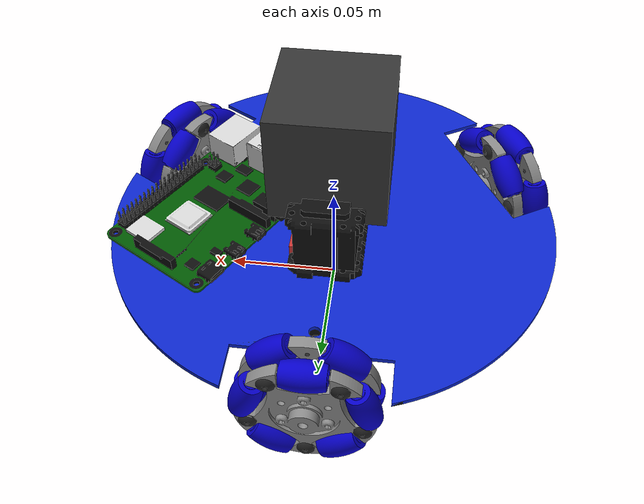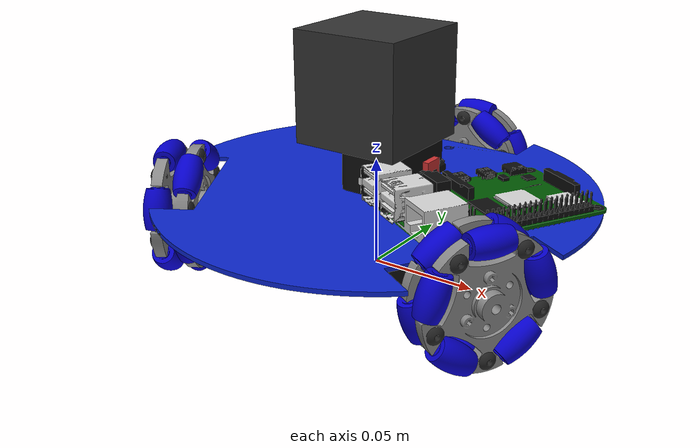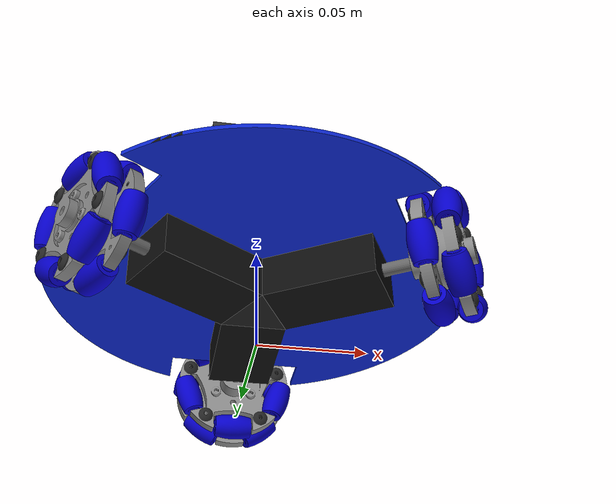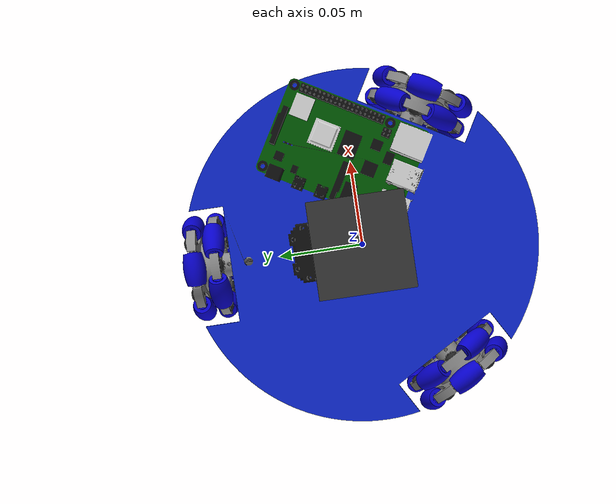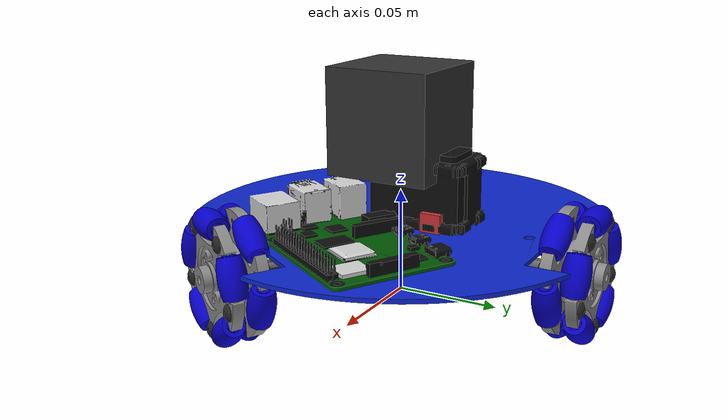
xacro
<?xml version="1.0"?>
<robot xmlns:xacro="http://www.ros.org/wiki/xacro" name="omni_with_mid360">
  <xacro:arg name="sensor_namespace" default="omni"/>

  <!-- Include Omni Base -->
  <xacro:include filename="$(find simple_rbt)/model/omni/omni_robot.urdf.xacro"/>

  <!-- Include Mid360 Sensor -->
  <xacro:include filename="$(find simple_rbt)/model/sensor/simple_mid360/model.xacro"/>

  <xacro:simple_mid360
    parent_link="base_link"
    xyz="0.0 0.0 0.05"
    rpy="0 0 0"
    sensor_namespace="$(arg sensor_namespace)"
  />

</robot>

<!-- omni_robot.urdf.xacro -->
<robot name="omni_robot" xmlns:xacro="http://ros.org/wiki/xacro">

  <!-- xacro property -->
  <xacro:property name="M_PI" value="3.14159274"/>

  <!-- xacro include file -->
  <xacro:include filename="$(find simple_rbt)/model/omni/urdf/base/base.urdf.xacro"/>  <!--base-->
  <xacro:include filename="$(find simple_rbt)/model/omni/urdf/omni_wheel/omni_wheel.urdf.xacro"/>   <!--omni-wheel-->
  <xacro:include filename="$(find simple_rbt)/model/omni/urdf/roller/roller.urdf.xacro"/>   <!--roller-->

  <!-- =============== Link & Joint =============== -->
  <!-- Base -->
  <link name="base_footprint"/>
  <xacro:base_v0 parent="base_footprint">
        <origin xyz="0 0 0.035" rpy="0 0 0" />
  </xacro:base_v0>

  <!-- Wheel -->
  <!-- 1st wheel -->
  <xacro:wheel_v0 prefix="first" parent="base_link">
	<origin xyz="0 0.088 -0.01" rpy="0 0 3.141593"/>
	<axis xyz="0 1 0"/>
  </xacro:wheel_v0>

  <xacro:roller_v0 prefix="r1_F" parent="first_wheel_link">
	<origin xyz="0 -0.006 0.024063" rpy="0 0 1.570796"/>
	<axis xyz="0 1 0"/>
  </xacro:roller_v0>
  <xacro:roller_v0 prefix="r2_F" parent="first_wheel_link">
	<origin xyz="-0.0228853 -0.006 0.0074359" rpy="-1.256637 0 1.570796"/>
	<axis xyz="0 1 0"/>
  </xacro:roller_v0>
  <xacro:roller_v0 prefix="r3_F" parent="first_wheel_link">
	<origin xyz="-0.0141439 -0.006 -0.0194674" rpy="-2.513274 0 1.570796"/>
	<axis xyz="0 1 0"/>
  </xacro:roller_v0>
  <xacro:roller_v0 prefix="r4_F" parent="first_wheel_link">
	<origin xyz="0.0141439 -0.006 -0.0194674" rpy="-3.769911 0 1.570796"/>
	<axis xyz="0 1 0"/>
  </xacro:roller_v0>
  <xacro:roller_v0 prefix="r5_F" parent="first_wheel_link">
	<origin xyz="0.0228853 -0.006 0.0074359" rpy="-5.026548 0 1.570796"/>
	<axis xyz="0 1 0"/>
  </xacro:roller_v0>

  <xacro:roller_v0 prefix="r6_F" parent="first_wheel_link">
	<origin xyz="0 0.006 -0.024063" rpy="0 0 1.570796"/>
	<axis xyz="0 1 0"/>
  </xacro:roller_v0>
  <xacro:roller_v0 prefix="r7_F" parent="first_wheel_link">
	<origin xyz="0.0228853 0.006 -0.0074359" rpy="-1.256637 0 1.570796"/>
	<axis xyz="0 1 0"/>
  </xacro:roller_v0>
  <xacro:roller_v0 prefix="r8_F" parent="first_wheel_link">
	<origin xyz="0.0141439 0.006 0.0194674" rpy="-2.513274 0 1.570796"/>
	<axis xyz="0 1 0"/>
  </xacro:roller_v0>
  <xacro:roller_v0 prefix="r9_F" parent="first_wheel_link">
	<origin xyz="-0.0141439 0.006 0.0194674" rpy="-3.769911 0 1.570796"/>
	<axis xyz="0 1 0"/>
  </xacro:roller_v0>
  <xacro:roller_v0 prefix="r10_F" parent="first_wheel_link">
	<origin xyz="-0.0228853 0.006 -0.0074359" rpy="-5.026548 0 1.570796"/>
	<axis xyz="0 1 0"/>
  </xacro:roller_v0>

  <!-- 2nd wheel -->
  <xacro:wheel_v0 prefix="second" parent="base_link">
	<origin xyz="-0.0762 -0.044 -0.01" rpy="0 0 5.235988" />
	<axis xyz="0 1 0"/>
  </xacro:wheel_v0>

  <xacro:roller_v0 prefix="r1_S" parent="second_wheel_link">
	<origin xyz="0 -0.006 0.024063" rpy="0 0 1.570796"/>
	<axis xyz="0 1 0"/>
  </xacro:roller_v0>
  <xacro:roller_v0 prefix="r2_S" parent="second_wheel_link">
	<origin xyz="-0.0228853 -0.006 0.0074359" rpy="-1.256637 0 1.570796"/>
	<axis xyz="0 1 0"/>
  </xacro:roller_v0>
  <xacro:roller_v0 prefix="r3_S" parent="second_wheel_link">
	<origin xyz="-0.0141439 -0.006 -0.0194674" rpy="-2.513274 0 1.570796"/>
	<axis xyz="0 1 0"/>
  </xacro:roller_v0>
  <xacro:roller_v0 prefix="r4_S" parent="second_wheel_link">
	<origin xyz="0.0141439 -0.006 -0.0194674" rpy="-3.769911 0 1.570796"/>
	<axis xyz="0 1 0"/>
  </xacro:roller_v0>
  <xacro:roller_v0 prefix="r5_S" parent="second_wheel_link">
	<origin xyz="0.0228853 -0.006 0.0074359" rpy="-5.026548 0 1.570796"/>
	<axis xyz="0 1 0"/>
  </xacro:roller_v0>

  <xacro:roller_v0 prefix="r6_S" parent="second_wheel_link">
	<origin xyz="0 0.006 -0.024063" rpy="0 0 1.570796"/>
	<axis xyz="0 1 0"/>
  </xacro:roller_v0>
  <xacro:roller_v0 prefix="r7_S" parent="second_wheel_link">
	<origin xyz="0.0228853 0.006 -0.0074359" rpy="-1.256637 0 1.570796"/>
	<axis xyz="0 1 0"/>
  </xacro:roller_v0>
  <xacro:roller_v0 prefix="r8_S" parent="second_wheel_link">
	<origin xyz="0.0141439 0.006 0.0194674" rpy="-2.513274 0 1.570796"/>
	<axis xyz="0 1 0"/>
  </xacro:roller_v0>
  <xacro:roller_v0 prefix="r9_S" parent="second_wheel_link">
	<origin xyz="-0.0141439 0.006 0.0194674" rpy="-3.769911 0 1.570796"/>
	<axis xyz="0 1 0"/>
  </xacro:roller_v0>
  <xacro:roller_v0 prefix="r10_S" parent="second_wheel_link">
	<origin xyz="-0.0228853 0.006 -0.0074359" rpy="-5.026548 0 1.570796"/>
	<axis xyz="0 1 0"/>
  </xacro:roller_v0>

<!-- 3rd wheel -->
  <xacro:wheel_v0 prefix="third" parent="base_link">
	<origin xyz="0.0762 -0.044 -0.01" rpy="0 0 1.047197" />
	<axis xyz="0 1 0"/>
  </xacro:wheel_v0>

  <xacro:roller_v0 prefix="r1_T" parent="third_wheel_link">
	<origin xyz="0 -0.006 0.024063" rpy="0 0 1.570796"/>
	<axis xyz="0 1 0"/>
  </xacro:roller_v0>
  <xacro:roller_v0 prefix="r2_T" parent="third_wheel_link">
	<origin xyz="-0.0228853 -0.006 0.0074359" rpy="-1.256637 0 1.570796"/>
	<axis xyz="0 1 0"/>
  </xacro:roller_v0>
  <xacro:roller_v0 prefix="r3_T" parent="third_wheel_link">
	<origin xyz="-0.0141439 -0.006 -0.0194674" rpy="-2.513274 0 1.570796"/>
	<axis xyz="0 1 0"/>
  </xacro:roller_v0>
  <xacro:roller_v0 prefix="r4_T" parent="third_wheel_link">
	<origin xyz="0.0141439 -0.006 -0.0194674" rpy="-3.769911 0 1.570796"/>
	<axis xyz="0 1 0"/>
  </xacro:roller_v0>
  <xacro:roller_v0 prefix="r5_T" parent="third_wheel_link">
	<origin xyz="0.0228853 -0.006 0.0074359" rpy="-5.026548 0 1.570796"/>
	<axis xyz="0 1 0"/>
  </xacro:roller_v0>

  <xacro:roller_v0 prefix="r6_T" parent="third_wheel_link">
	<origin xyz="0 0.006 -0.024063" rpy="0 0 1.570796"/>
	<axis xyz="0 1 0"/>
  </xacro:roller_v0>
  <xacro:roller_v0 prefix="r7_T" parent="third_wheel_link">
	<origin xyz="0.0228853 0.006 -0.0074359" rpy="-1.256637 0 1.570796"/>
	<axis xyz="0 1 0"/>
  </xacro:roller_v0>
  <xacro:roller_v0 prefix="r8_T" parent="third_wheel_link">
	<origin xyz="0.0141439 0.006 0.0194674" rpy="-2.513274 0 1.570796"/>
	<axis xyz="0 1 0"/>
  </xacro:roller_v0>
  <xacro:roller_v0 prefix="r9_T" parent="third_wheel_link">
	<origin xyz="-0.0141439 0.006 0.0194674" rpy="-3.769911 0 1.570796"/>
	<axis xyz="0 1 0"/>
  </xacro:roller_v0>
  <xacro:roller_v0 prefix="r10_T" parent="third_wheel_link">
	<origin xyz="-0.0228853 0.006 -0.0074359" rpy="-5.026548 0 1.570796"/>
	<axis xyz="0 1 0"/>
  </xacro:roller_v0>

  <!-- ===============  Transmission =============== -->
  <xacro:wheel_trans_v0 prefix="first"/>
  <xacro:wheel_trans_v0 prefix="second"/>
  <xacro:wheel_trans_v0 prefix="third"/>
  <!-- =============== Gazebo =============== -->
  <gazebo>
    <plugin name="gazebo_ros_control" filename="libgazebo_ros_control.so">
      <robotNamespace>$(arg robot_namespace)</robotNamespace>
    </plugin>
  </gazebo>

  <!-- Base -->
  <xacro:base_gazebo_v0/>

  <!-- Wheel -->
  <xacro:wheel_gazebo_v0 prefix="first"/>
  <xacro:wheel_gazebo_v0 prefix="second"/>
  <xacro:wheel_gazebo_v0 prefix="third"/>
</robot>

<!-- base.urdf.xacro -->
<robot xmlns:xacro="http://ros.org/wiki/xacro">

  <xacro:include filename="$(find simple_rbt)/model/omni/urdf/base/base.gazebo.xacro"/>

  <xacro:macro name="base_v0" params="parent *joint_origin">
	<joint name="base_link_joint" type="fixed">
	  <xacro:insert_block name="joint_origin"/>
	  <parent link="${parent}"/>
	  <child link="base_link"/>
	</joint>

	<link name="base_link">
	  <visual>
		<geometry>
		  <mesh filename="package://simple_rbt/model/omni/meshes/DAE/base/omni_wheel_body.dae"/>
		</geometry>
	  </visual>
	  <collision>
		<geometry>
		  <mesh filename="package://simple_rbt/model/omni/meshes/STL/base/base_link.stl"/>
		</geometry>
	  </collision>
	  <inertial>
		<origin xyz="0 0 0"/>
		<mass value="1.167"/>
		<inertia ixx="0.0016" ixy="0" ixz="0" iyy="0.0016" iyz="0" izz="0.0032" />
	  </inertial>
          <surface>
            <friction>
              <ode>
                <mu>0.8</mu>
                <mu2>0.8</mu2>
                <kp>1e15</kp>
                <kd>1e13</kd>
              </ode>
            </friction>
            <bounce>
              <restitution_coefficient>0.01</restitution_coefficient>
              <threshold>10</threshold>
            </bounce>
            <contact>
              <ode>
                <max_vel>0.01</max_vel>
                <minDepth>0</minDepth>
                <contact_surface_layer>0</contact_surface_layer>
              </ode>
            </contact>
          </surface>
	</link>
  </xacro:macro>

</robot>

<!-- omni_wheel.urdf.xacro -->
<robot xmlns:xacro="http://ros.org/wiki/xacro">

  <xacro:include filename="$(find simple_rbt)/model/omni/urdf/omni_wheel/omni_wheel.transmission.xacro"/>
  <xacro:include filename="$(find simple_rbt)/model/omni/urdf/omni_wheel/omni_wheel.gazebo.xacro"/>

  <xacro:macro name="wheel_v0" params="prefix parent *joint_origin *joint_axis">
	<joint name="${prefix}_wheel_joint" type="continuous">
	  <xacro:insert_block name="joint_origin"/>
	  <parent link="${parent}"/>
	  <child link="${prefix}_wheel_link"/>
          <limit effort="100" velocity="100"/>
	  <xacro:insert_block name="joint_axis"/>
	</joint>

	<link name="${prefix}_wheel_link">
	  <visual>
		<geometry>
		  <mesh filename="package://simple_rbt/model/omni/meshes/DAE/omni_wheel/omni_wheel.dae"/>
		</geometry>
	  </visual>
	  <collision>
		<geometry>
		  <mesh filename="package://simple_rbt/model/omni/meshes/STL/omni_wheel/omni_wheel.stl"/>
		</geometry>
	  </collision>
	  <inertial>
		<origin xyz="0.0 -0.011 -0.0"/>
		<mass value="0.25"/>
		<inertia ixx="0.00031" ixy="0" ixz="0" iyy="0.0005" iyz="0" izz="0.00031"/>
	  </inertial>
          <surface>
            <friction>
              <ode>
                <mu1>1.2</mu1>
                <mu2>1.2</mu2>
                <kp>1e15</kp>
                <kd>1e13</kd>
              </ode>
            </friction>
            <bounce>
              <restitution_coefficient>0.01</restitution_coefficient>
              <threshold>0</threshold>
            </bounce>
            <contact>
              <ode>
                <max_vel>10</max_vel>
              </ode>
            </contact>
          </surface>
	</link>
  </xacro:macro>

</robot>

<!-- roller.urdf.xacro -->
<robot xmlns:xacro="http://ros.org/wiki/xacro">

  <xacro:include filename="$(find simple_rbt)/model/omni/urdf/roller/roller.transmission.xacro"/>
  <xacro:include filename="$(find simple_rbt)/model/omni/urdf/roller/roller.gazebo.xacro"/>

  <xacro:macro name="roller_v0" params="prefix parent *joint_origin *joint_axis">
	<joint name="${prefix}_roller_joint" type="continuous">
	  <xacro:insert_block name="joint_origin"/>
	  <parent link="${parent}"/>
	  <child link="${prefix}_roller_link"/>
	  <xacro:insert_block name="joint_axis"/>
	</joint>

	<link name="${prefix}_roller_link">
	  <visual>
		<geometry>
		  <mesh filename="package://simple_rbt/model/omni/meshes/DAE/roller/omni_roller.dae"/>
		</geometry>
	  </visual>
	  <collision>
		<geometry>
		  <mesh filename="package://simple_rbt/model/omni/meshes/STL/roller/roller.stl"/>
		</geometry>
	  </collision>
	  <inertial>
		<origin xyz="0.0 0.0 0.0"/>
		<mass value="0.009"/>
		<inertia ixx="0.000001257" ixy="0" ixz="0" iyy="0.000000342" iyz="0" izz="0.000001257"/>
	  </inertial>
          <surface>
            <friction>
              <ode>
                <mu1>1.2</mu1>
                <mu2>1.2</mu2>
                <kp>1e15</kp>
                <kd>1e13</kd>
              </ode>
            </friction>
            <bounce>
              <restitution_coefficient>0.01</restitution_coefficient>
              <threshold>0</threshold>
            </bounce>
            <contact>
              <ode>
                <max_vel>10</max_vel>
              </ode>
            </contact>
          </surface>
	</link>
  </xacro:macro>

</robot>

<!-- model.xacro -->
<robot xmlns:xacro="http://www.ros.org/wiki/xacro">

    <xacro:macro name="simple_mid360" params="parent_link xyz rpy sensor_namespace">

        <link name="livox_link">
            <inertial>
                <mass value="0.1"/>
                <inertia ixx="0.0001" ixy="0.0" ixz="0.0" iyy="0.0001" iyz="0.0" izz="0.0001"/>
            </inertial>

            <collision name="lidar_collision">
                <geometry>
                    <box size="0.05 0.05 0.05"/>
                </geometry>
            </collision>

            <visual name="lidar_visual">
                <geometry>
                    <box size="0.05 0.05 0.05"/>
                </geometry>
                <material name="dark_gray">
                    <color rgba="0.2 0.2 0.2 1"/>
                </material>
            </visual>
        </link>

        <link name="imu_link">
            <inertial>
                <mass value="0.01"/>
                <inertia ixx="1e-6" ixy="0.0" ixz="0.0" iyy="1e-6" iyz="0.0" izz="1e-6"/>
            </inertial>

            <visual name="imu_visual">
                <geometry>
                    <box size="0.01 0.01 0.01"/>
                </geometry>
                <material name="red_imu">
                    <color rgba="0.8 0.2 0.2 1"/>
                </material>
            </visual>
        </link>

        <joint name="livox_mount_joint" type="fixed">
            <parent link="${parent_link}"/>
            <child link="livox_link"/>
            <origin xyz="${xyz}" rpy="${rpy}"/>
        </joint>

        <joint name="livox_imu_joint" type="fixed">
            <parent link="livox_link"/>
            <child link="imu_link"/>
            <origin xyz="0.011 0.02329 -0.04412" rpy="0 0 0"/>
        </joint>

        <gazebo reference="livox_link">
            <sensor type="ray" name="laser_livox">
                <pose>0 0 0.05 0 0 0</pose>
                <visualize>false</visualize>
                <always_on>true</always_on>
                <update_rate>10</update_rate>

                <plugin name="gazebo_ros_laser_controller" filename="liblivox_laser_simulation.so">
                    <robotNamespace>${sensor_namespace}</robotNamespace>
                    <ray>
                        <scan>
                            <horizontal>
                                <samples>100</samples>
                                <resolution>1</resolution>
                                <min_angle>-3.1415926535897931</min_angle>
                                <max_angle>3.1415926535897931</max_angle>
                            </horizontal>
                            <vertical>
                                <samples>50</samples>
                                <resolution>1</resolution>
                                <min_angle>-3.1415926535897931</min_angle>
                                <max_angle>3.1415926535897931</max_angle>
                            </vertical>
                        </scan>
                        <range>
                            <min>0.1</min>
                            <max>40</max>
                            <resolution>1</resolution>
                        </range>
                        <noise>
                            <type>gaussian</type>
                            <mean>0.0</mean>
                            <stddev>0.0</stddev>
                        </noise>
                    </ray>

                    <visualize>true</visualize>
                    <samples>20000</samples>
                    <downsample>1</downsample>
                    <csv_file_name>mid360-real-centr.csv</csv_file_name>
                    <publish_pointcloud_type>3</publish_pointcloud_type>
                    <ros_topic>livox/lidar</ros_topic>
                    <frameName>livox_link</frameName>
                </plugin>
            </sensor>
            <material>Gazebo/DarkGray</material>
        </gazebo>

        <gazebo reference="imu_link">
            <sensor name="imu_sensor" type="imu">
                <pose>0 0 0 0 0 0</pose>
                <always_on>true</always_on>
                <update_rate>200</update_rate>
                <visualize>true</visualize>
                <topic>__default_topic__</topic>

                <plugin filename="libgazebo_ros_imu_sensor.so" name="imu_plugin">
                    <robotNamespace>${sensor_namespace}</robotNamespace>
                    <topicName>livox/imu</topicName>
                    <bodyName>imu_link</bodyName>
                    <updateRateHZ>200.0</updateRateHZ>
                    <gaussianNoise>0.0</gaussianNoise>
                    <xyzOffset>0 0 0</xyzOffset>
                    <rpyOffset>0 0 0</rpyOffset>
                    <frameName>imu_link</frameName>
                </plugin>
            </sensor>
            <material>Gazebo/Red</material>
        </gazebo>

    </xacro:macro>

</robot>
